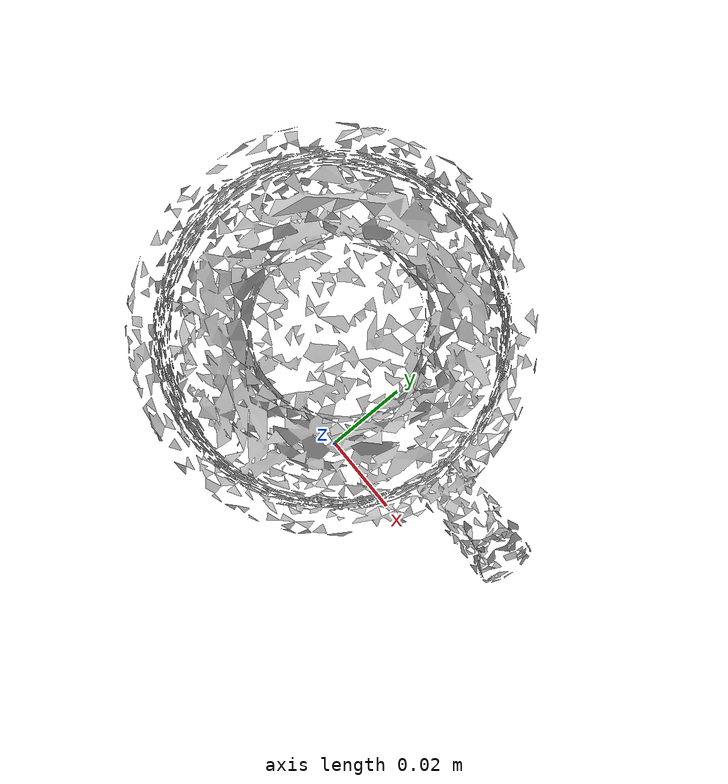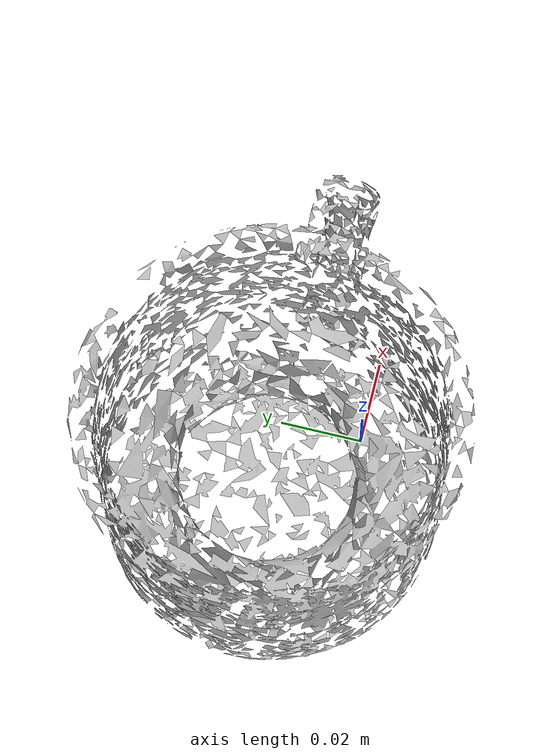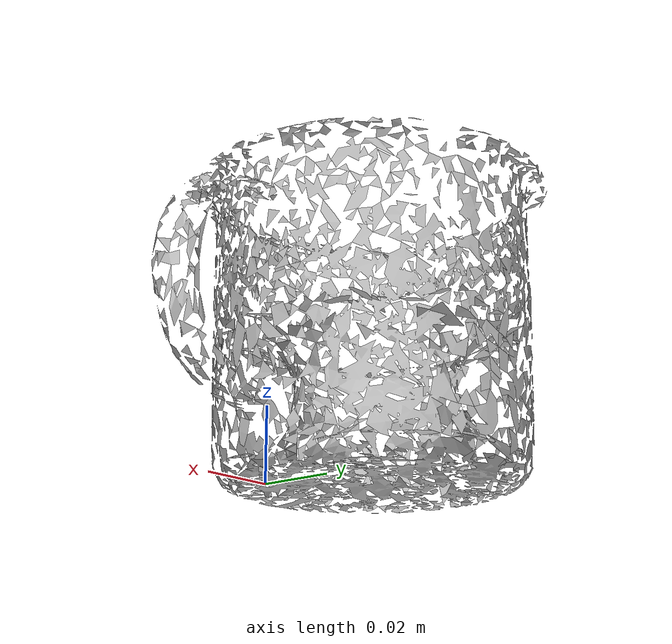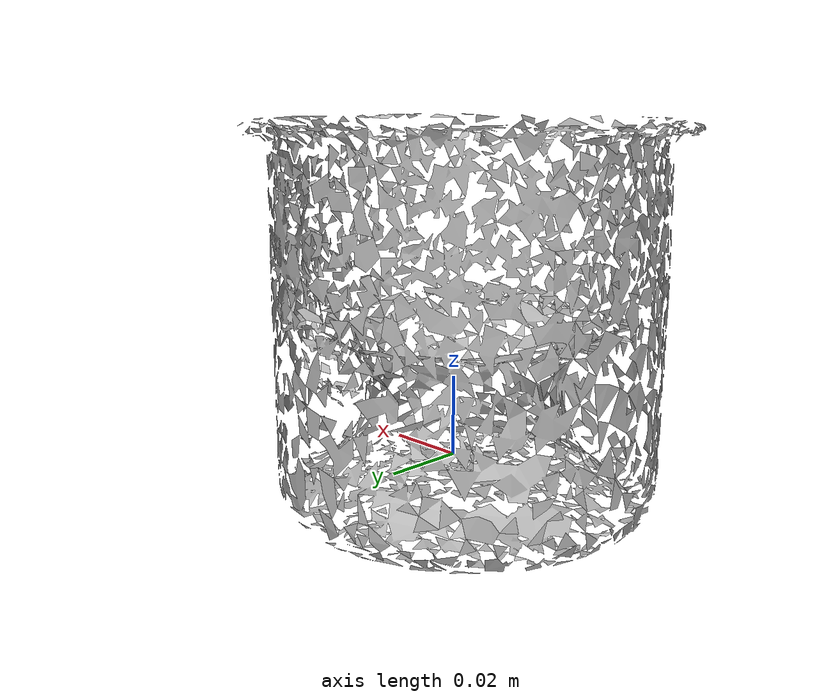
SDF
<?xml version='1.0'?>
<sdf version="1.4">
  <model name="mug">
    <static>false</static>
    <link name="link">
      <inertial>
        <pose>-0.018858606464151616 0.01657296231165061 0.026898852026976835 2.2183437326530093 -1.4689543656478903 -2.2505049476744663</pose>
        <mass>0.00013812094844812262</mass>
        <inertia>
          <ixx>1.7285969013124893e-07</ixx>
          <ixy>-9.374937893675512e-24</ixy>
          <ixz>-4.708535091401486e-24</ixz>
          <iyy>1.350707382312927e-07</iyy>
          <iyz>1.5713125098061972e-24</iyz>
          <izz>1.1879517405979696e-07</izz>
        </inertia>
      </inertial>
      <collision name="collision">
        <geometry>
          <mesh>
            <!-- Use a downsampled mesh for collisions -->
            <uri>model://025_mug/downsampled.obj</uri>
	        </mesh>
        </geometry>
        <surface>
      </surface>
      </collision>
      <visual name="visual">
        <geometry>
          <mesh>
            <uri>model://025_mug/google_16k/textured.obj</uri>
	        </mesh>
        </geometry>
        <material>
          <script>
            <uri>model://025_mug/mug.material</uri>
            <name>mug</name>
          </script>
        </material>
      </visual>
    </link>
  </model>
</sdf>
